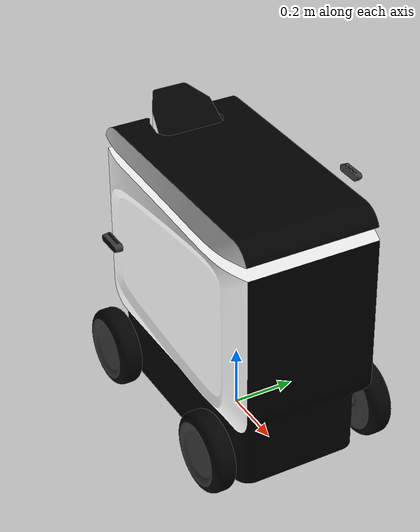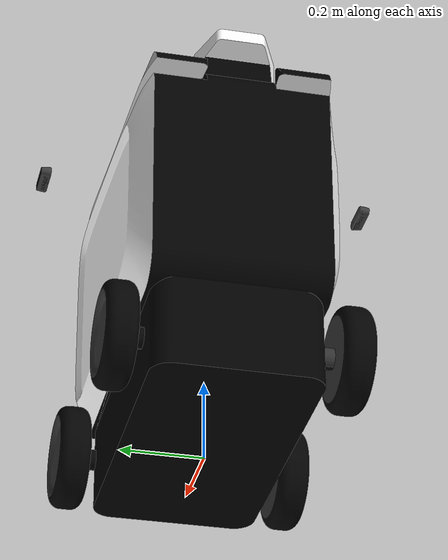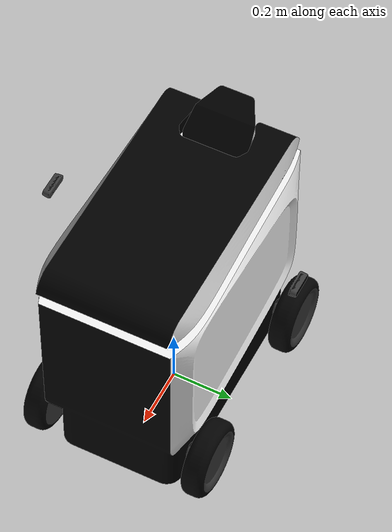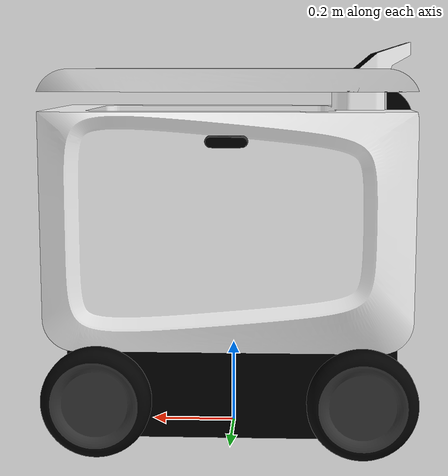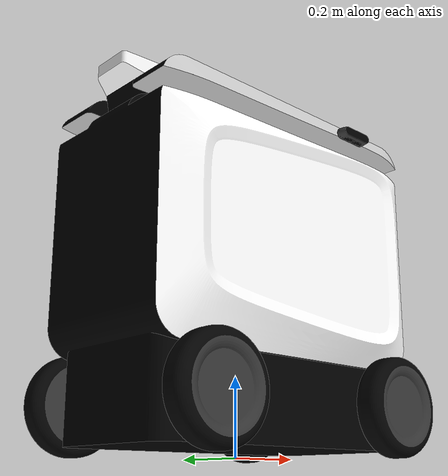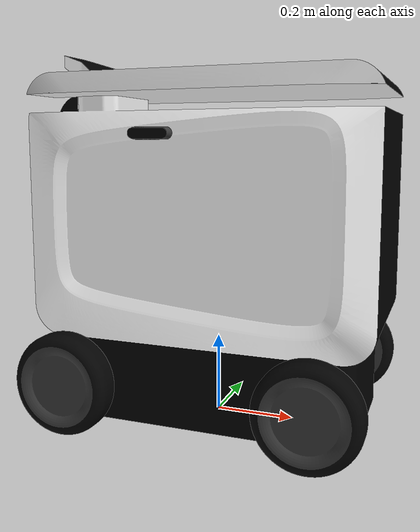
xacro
<?xml version="1.0"?>

<robot name="deliverybot" xmlns:xacro="http://wiki.ros.org/xacro">
    <xacro:include
        filename="$(find deliverybot_description)/models/deliverybot/xacro/deliverybot.xacro" />
    <xacro:include
        filename="$(find deliverybot_description)/models/deliverybot/xacro/cameras.xacro" />

    <!-- Realsense Camera -->
    <xacro:realsense_camera
        name="front"
        parent="base_link"
        orientation="${90 * deg_to_rad}"
        mirror="-1">
        <origin xyz="0 0.39875 0.25250" rpy="0 0 ${90*deg_to_rad}" />
    </xacro:realsense_camera>
    <xacro:realsense_camera
        name="rear"
        parent="base_link"
        orientation="${90 * deg_to_rad}"
        mirror="1">
        <origin xyz="0 -0.39875 0.25250" rpy="0 0 ${-90 * deg_to_rad}" />
    </xacro:realsense_camera>
</robot>

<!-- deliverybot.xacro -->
<robot name="deliverybot" xmlns:xacro="http://wiki.ros.org/xacro">
    <xacro:include
        filename="$(find deliverybot_description)/models/deliverybot/xacro/deliverybot_joints.xacro" />
    <xacro:include
        filename="$(find deliverybot_description)/models/deliverybot/xacro/deliverybot_control.xacro" />
    <xacro:property name="robot_namespace" value="/deliverybot" />

    <!-- Gazebo Plugins -->
    <gazebo>
        <plugin name="gazebo_ros2_control" filename="libgazebo_ros2_control.so">
            <robotNamespace>${robot_namespace}</robotNamespace>
            <parameters>$(find deliverybot_description)/models/deliverybot/config/controllers.yaml</parameters>
        </plugin>
    </gazebo>

    <!-- Math Constants -->
    <xacro:property name="deg_to_rad" value="0.01745329251994329577" />
    <xacro:property name="steer_limhigh_deg" value="30" />
    <xacro:property name="steer_limlow_deg" value="-30" />
    <!-- Robot Base Dimensions -->
    <xacro:property name="base_length" value="0.85" />
    <xacro:property name="base_width" value="0.35" />
    <xacro:property name="base_mass" value="72.3" />

    <!-- Wheel Link Dimensions -->
    <xacro:property name="wheel_radius" value="0.125" />
    <xacro:property name="wheel_thickness" value="0.1" />
    <xacro:property name="wheel_mass" value="3.5" />

    <!-- Steering Link Dimensions -->
    <xacro:property name="steer_radius" value="0.1" />
    <xacro:property name="steer_thickness" value="0.02" />
    <xacro:property name="steer_mass" value="1" />

    <!-- Velocity and Movement -->
    <xacro:property name="velocity_limlow" value="-5.0" />
    <xacro:property name="velocity_limhigh" value="8.0" />

    <!-- Axle Positions -->
    <xacro:property name="axle_length_offset" value="0.125" />
    <xacro:property name="axle_width_offset" value="0.1" />
    <xacro:property name="steer_offset" value="-0.15" />

    <!-- Dummy Link -->
    <link name="base_footprint">
        <origin xyz="0 0 0" rpy="0 0 0" />
    </link>

    <!-- Base Link -->
    <link name="base_link">
        <visual>
            <origin xyz="0 0 0" rpy="0 0 ${-pi/2}" />
            <geometry>
                <mesh
                    filename="package://deliverybot_description/models/deliverybot/meshes/EVA_Body.dae" />
            </geometry>
        </visual>
        <collision>
            <origin xyz="0 0 0" rpy="0 0 ${-pi/2}" />
            <geometry>
                <mesh
                    filename="package://deliverybot_description/models/deliverybot/meshes/EVA_Body.dae" />
            </geometry>
        </collision>
        <inertial>
            <origin xyz="0 0 0" rpy="0 0 ${-pi/2}" />
            <mass value="64.3" />
            <inertia ixx="8.303" ixy="0" ixz="0" iyy="5.468" iyz="0.00" izz="6.02" />
        </inertial>
    </link>
    <!-- Dummy Joint -->
    <joint name="base_joint" type="fixed">
        <origin xyz="0 0 0.470" rpy="0 0 0" />
        <parent link="base_footprint" />
        <child link="base_link" />
    </joint>

    <link name="center_steer_link">
        <inertial>
            <origin rpy="0 0 0" xyz="0 0 0" />
            <mass value="${steer_mass}" />
            <inertia
                ixx="${steer_mass * (3.0 * steer_radius * steer_radius + steer_thickness * steer_thickness) / 12.0}"
                ixy="0.0" ixz="0.0"
                iyy="${steer_mass * (3.0 * steer_radius * steer_radius + steer_thickness * steer_thickness) / 12.0}"
                iyz="0.0"
                izz="${steer_mass * (steer_radius * steer_radius) / 2.0}" />
        </inertial>
    </link>
    <joint name="center_steer_joint" type="revolute">
        <parent link="base_link" />
        <child link="center_steer_link" />
        <origin xyz="${base_length/2 - axle_length_offset} 0 -0.345" rpy="0 0 0" />
        <axis xyz="0 0 1" />
        <limit effort="${steer_effort}" lower="${steer_limit_deg * deg_to_rad * -1.0}"
            upper="${steer_limit_deg * deg_to_rad}" velocity="${steer_velocity}" />
    </joint>

    <!-- Steerable Front Wheels -->
    <xacro:front_wheel_lr
        name="front_right"
        parent="base"
        reflect="-1"
        wheel_radius="${wheel_radius}"
        wheel_thickness="${wheel_thickness}"
        wheel_mass="${wheel_mass}"
        steer_radius="${steer_radius}"
        steer_thickness="${steer_thickness}"
        steer_mass="${steer_mass}"
        base_length="${base_length}"
        base_width="${base_width}"
        axle_length_offset="${axle_length_offset}"
        axle_width_offset="${axle_width_offset}"
        steer_height="${wheel_radius+steer_offset}">
    </xacro:front_wheel_lr>
    <xacro:front_wheel_lr
        name="front_left"
        parent="base"
        reflect="1"
        wheel_radius="${wheel_radius}"
        wheel_thickness="${wheel_thickness}"
        wheel_mass="${wheel_mass}"
        steer_radius="${steer_radius}"
        steer_thickness="${steer_thickness}"
        steer_mass="${steer_mass}"
        base_length="${base_length}"
        base_width="${base_width}"
        axle_length_offset="${axle_length_offset}"
        axle_width_offset="${axle_width_offset}"
        steer_height="${wheel_radius+steer_offset}">
    </xacro:front_wheel_lr>

    <xacro:rear_wheel_lr
        name="rear_right"
        parent="base"
        reflect="-1"
        wheel_radius="${wheel_radius}"
        wheel_thickness="${wheel_thickness}"
        wheel_mass="${wheel_mass}"
        base_length="${base_length}"
        base_width="${base_width}"
        axle_length_offset="${axle_length_offset}"
        axle_width_offset="${axle_width_offset}">
    </xacro:rear_wheel_lr>
    <xacro:rear_wheel_lr
        name="rear_left"
        parent="base"
        reflect="1"
        wheel_radius="${wheel_radius}"
        wheel_thickness="${wheel_thickness}"
        wheel_mass="${wheel_mass}"
        base_length="${base_length}"
        base_width="${base_width}"
        axle_length_offset="${axle_length_offset}"
        axle_width_offset="${axle_width_offset}">
    </xacro:rear_wheel_lr>
    <xacro:door
        name="door"
        parent="base">
    </xacro:door>

    <ros2_control name="GazeboSystem" type="system">
        <hardware>
            <plugin>gazebo_ros2_control/GazeboSystem</plugin>
        </hardware>
        <xacro:steering_control
            name="center"
            steer_limlow="${steer_limlow_deg * deg_to_rad}"
            steer_limhigh="${steer_limhigh_deg * deg_to_rad}" />
        <xacro:steering_control
            name="front_right"
            steer_limlow="${steer_limlow_deg * deg_to_rad}"
            steer_limhigh="${steer_limhigh_deg * deg_to_rad}" />
        <xacro:velocity_control
            name="front_right"
            velocity_limlow="${velocity_limlow}"
            velocity_limhigh="${velocity_limhigh}" />
        <xacro:steering_control
            name="front_left"
            steer_limlow="${steer_limlow_deg * deg_to_rad}"
            steer_limhigh="${steer_limhigh_deg * deg_to_rad}" />
        <xacro:velocity_control
            name="front_left"
            velocity_limlow="${velocity_limlow}"
            velocity_limhigh="${velocity_limhigh}" />
        <xacro:velocity_control
            name="rear_right"
            velocity_limlow="${velocity_limlow}"
            velocity_limhigh="${velocity_limhigh}" />
        <xacro:velocity_control
            name="rear_left"
            velocity_limlow="${velocity_limlow}"
            velocity_limhigh="${velocity_limhigh}" />
        <xacro:door_control
            name="door"
            door_limlow="${0 * deg_to_rad}"
            door_limhigh="${-90 * deg_to_rad}" />
    </ros2_control>
</robot>

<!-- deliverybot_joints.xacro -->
<robot name="deliverybot" xmlns:xacro="http://wiki.ros.org/xacro">
    <xacro:property name="steer_effort" value="10.0" />
    <xacro:property name="steer_velocity"
        value="0.5" />
    <xacro:property name="steer_limit_deg" value="35.0" />
    <xacro:macro name="front_wheel_lr"
        params="
        name
        parent
        reflect
        wheel_radius
        wheel_thickness
        wheel_mass
        steer_radius
        steer_thickness
        steer_mass
        base_length
        base_width
        axle_length_offset
        axle_width_offset
        steer_height">

        <link name="${name}_steer_link">
            <inertial>
                <origin rpy="0 0 0" xyz="0 0 0" />
                <mass value="${steer_mass}" />
                <inertia
                    ixx="${steer_mass * (3.0 * steer_radius * steer_radius + steer_thickness * steer_thickness) / 12.0}"
                    ixy="0.0" ixz="0.0"
                    iyy="${steer_mass * (3.0 * steer_radius * steer_radius + steer_thickness * steer_thickness) / 12.0}"
                    iyz="0.0"
                    izz="${steer_mass * (steer_radius * steer_radius) / 2.0}" />
            </inertial>
        </link>
        <joint name="${name}_steer_joint" type="revolute">
            <parent link="${parent}_link" />
            <child link="${name}_steer_link" />
            <origin
                xyz="${base_length/2-axle_length_offset} ${reflect*(base_width/2)} ${-0.345}"
                rpy="0 0 0" />
            <axis xyz="0 0 1" />
            <limit effort="${steer_effort}"
                lower="${steer_limit_deg * deg_to_rad * -1.0}"
                upper="${steer_limit_deg * deg_to_rad}"
                velocity="${steer_velocity}" />
        </joint>
        <link name="${name}_wheel_link">
            <visual>
                <origin xyz="0 0 0" rpy="0 0 ${reflect * -pi/2}" />
                <geometry>
                    <mesh
                        filename="package://deliverybot_description/models/deliverybot/meshes/EVA_Wheel.dae" />
                </geometry>
            </visual>
            <collision>
                <origin xyz="0 0 0" rpy="0 0 ${reflect * -pi/2}" />
                <geometry>
                    <mesh
                        filename="package://deliverybot_description/models/deliverybot/meshes/EVA_Wheel.dae" />
                </geometry>
                <surface>
                    <friction>
                        <ode>
                            <mu>0.7</mu>
                            <mu2>0.7</mu2>
                        </ode>
                    </friction>
                </surface>
            </collision>
            <inertial>
                <origin xyz="0 0 0" rpy="0 0 0" />
                <mass value="3.512" />
                <inertia ixx="0.02665" ixy="0" ixz="0" iyy="0.0148" iyz="0" izz="0.01479" />
            </inertial>
        </link>
        <joint name="${name}_wheel_joint" type="continuous">
            <parent link="${name}_steer_link" />
            <child link="${name}_wheel_link" />
            <origin xyz="0 ${reflect * (wheel_thickness)} 0" rpy="0 0 0" />
            <axis xyz="0 1 0" />
        </joint>
        <gazebo reference="${name}_steer_link">
            <mu1 value="2.0" />
            <mu2 value="2.0" />
            <kp value="10000000.0" />
            <kd value="1.0" />
            <fdir1 value="0 1 0" />
        </gazebo>

        <gazebo reference="${name}_wheel_link">
            <mu1 value="2.0" />
            <mu2 value="2.0" />
            <kp value="10000000.0" />
            <kd value="1.0" />
            <fdir1 value="0 1 0" />
        </gazebo>
    </xacro:macro>
    <!-- Rear Wheel Links -->
    <xacro:macro name="rear_wheel_lr"
        params="
        name
        parent
        reflect
        wheel_radius
        wheel_thickness
        wheel_mass
        base_length
        base_width
        axle_length_offset
        axle_width_offset">
        <link name="${name}_wheel_link">
            <visual>
                <origin xyz="0 0 0" rpy="0 0 ${reflect * -pi/2}" />
                <geometry>
                    <mesh
                        filename="package://deliverybot_description/models/deliverybot/meshes/EVA_Wheel.dae" />
                </geometry>
            </visual>
            <collision>
                <origin xyz="0 0 0" rpy="0 0 ${reflect * -pi/2}" />
                <geometry>
                    <mesh
                        filename="package://deliverybot_description/models/deliverybot/meshes/EVA_Wheel.dae" />
                </geometry>
                <surface>
                    <friction>
                        <ode>
                            <mu>0.7</mu>
                            <mu2>0.7</mu2>
                        </ode>
                    </friction>
                </surface>
            </collision>
            <inertial>
                <origin xyz="0 0 0" rpy="0 0 ${reflect * -pi/2}" />
                <mass value="3.512" />
                <inertia ixx="0.02665" ixy="0" ixz="0" iyy="0.0148" iyz="0" izz="0.01479" />
            </inertial>

        </link>
        <joint name="${name}_wheel_joint" type="continuous">
            <parent link="${parent}_link" />
            <child link="${name}_wheel_link" />
            <origin
                xyz="${-(base_length/2-axle_length_offset)} ${reflect*(base_width/2 + wheel_thickness)} ${-0.345}"
                rpy="0 0 0" />
            <axis xyz="0 1 0" />
        </joint>
        <gazebo reference="${name}_wheel_link">
            <mu1 value="2.0" />
            <mu2 value="2.0" />
            <kp value="10000000.0" />
            <kd value="1.0" />
            <fdir1 value="0 1 0" />
        </gazebo>
    </xacro:macro>
    <xacro:macro name="door"
        params="
        name
        parent">
        <link name="${name}_link">
            <visual>
                <geometry>
                    <mesh
                        filename="package://deliverybot_description/models/deliverybot/meshes/EVA_Lid.dae" />
                </geometry>
                <origin rpy="0 0 ${-pi/2}" xyz="0.400 -0.002550 0.01750" />
            </visual>
            <collision>
                <origin rpy="0 0 ${-pi/2}" xyz="0.400 -0.002550 0.01750" />
                <geometry>
                    <mesh
                        filename="package://deliverybot_description/models/deliverybot/meshes/EVA_Lid.dae" />
                </geometry>
            </collision>
            <inertial>
                <origin rpy="0 0 0" xyz="0 0 0" />
                <mass value="8" />
                <inertia ixx="0.4381" ixy="0" ixz="0" iyy="0.1637" iyz="0.005" izz="0.6" />
            </inertial>
        </link>
        <joint name="${name}_joint" type="revolute">
            <limit lower="0" upper="-1.5708" effort="100" velocity="0.5" />
            <origin rpy="0 0 0" xyz="-0.415 0 0.35250" />
            <parent link="${parent}_link" />
            <child link="${name}_link" />
            <axis xyz="0 1 0" rpy="0 0 0" />
        </joint>
    </xacro:macro>
</robot>

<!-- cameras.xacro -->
<robot name="deliverybot" xmlns:xacro="http://wiki.ros.org/xacro">
    <xacro:macro
        name="realsense_camera"
        params="
        name
        parent
        orientation
        mirror
        *origin">

        <!-- Visual Component -->
        <link name="${name}_rgb_link_optical" />
        <joint name="${name}_rgb_joint_optical" type="fixed">
            <origin xyz="0.025 0 0" rpy="0 0 0" />
            <parent link="${name}_depth_link" />
            <child link="${name}_rgb_link_optical" />
        </joint>
        <gazebo reference="${name}_rgb_link_optical">
            <sensor type="camera" name="${name}_rgb_camera">
                <visualize>false</visualize>
                <update_rate>10.0</update_rate>
                <camera name="${name}_rgb_camera">
                    <pose>0 0 0 0 0 0</pose>
                    <horizontal_fov>1.487021</horizontal_fov>
                    <image>
                        <width>1280</width>
                        <height>720</height>
                        <format>B8G8R8</format>
                    </image>
                    <clip>
                        <near>0.011</near>
                        <far>10</far>
                    </clip>
                </camera>
                <plugin name="${name}_rgb_controller" filename="libgazebo_ros_camera.so">
                    <ros>
                        <namespace>d430</namespace>
                        <remapping>${name}_rgb/image_raw:=color/image_raw</remapping>
                        <remapping>${name}_rgb/camera_info:=camera_info</remapping>
                    </ros>
                    <alwaysOn>true</alwaysOn>
                    <updateRate>0.0</updateRate>
                    <cameraName>${name}_rgb_camera</cameraName>
                    <frame_name>${name}_rgb_link_optical</frame_name>
                  </plugin>
            </sensor>
        </gazebo>

        <!-- Depth Component -->
        <link name="${name}_depth_link">
            <visual>
                <origin xyz="0 0 0" rpy="0 0 ${orientation}" />
                <geometry>
                    <mesh
                        filename="package://deliverybot_description/models/deliverybot/meshes/IntelRealsense.dae" scale="0.1 0.1 0.1" />
                </geometry>
            </visual>
            <collision>
                <origin xyz="0 0 0" rpy="0 0 ${orientation}" />
                <geometry>
                    <mesh
                        filename="package://deliverybot_description/models/deliverybot/meshes/IntelRealsense.dae" scale="0.1 0.1 0.1" />
                </geometry>
            </collision>
            <inertial>
                <origin xyz="0 0 0" rpy="0 0 ${orientation}" />
                <mass value="0.1" />
                <inertia ixx="0.001" ixy="0" ixz="0" iyy="0.005" iyz="0" izz="0.005" />
            </inertial>
        </link>
        <link name="${name}_depth_link_optical" />
        <joint name="${name}_depth_joint" type="fixed">
            <parent link="${parent}" />
            <child link="${name}_depth_link" />
            <xacro:insert_block name="origin" />
        </joint>
        <joint name="${name}_depth_joint_optical" type="fixed">
            <origin xyz="0 0 0" rpy="${-pi/2} 0 ${-pi/2}" />
            <parent link="${name}_depth_link" />
            <child link="${name}_depth_link_optical" />
        </joint>
        <gazebo reference="${name}_depth_link">
            <sensor type="depth" name="${name}_depth_camera">
                <visualize>true</visualize>
                <update_rate>10.0</update_rate>
                <always_on>true</always_on>
                <pose>0 0 0 0 0 0</pose>
                <camera name="${name}_depth_camera">
                    <horizontal_fov>1.487021</horizontal_fov>
                    <image>
                        <width>424</width>
                        <height>240</height>
                        <format>B8G8R8</format>
                    </image>
                    <clip>
                        <near>0.5</near>
                        <far>8</far>
                    </clip>
                </camera>
                <plugin name="${name}_depth_controller" filename="libgazebo_ros_camera.so">
                    <ros>
                        <namespace>d430</namespace>
                        <remapping>${name}_depth/image_raw:=color/image_raw</remapping>
                        <remapping>${name}_depth/depth/image:=depth/image_rect_raw</remapping>
                        <remapping>${name}_depth/camera_info:=camera_info</remapping>
                        <remapping>${name}_depth/depth/camera_info:=depth/camera_info</remapping>
                        <remapping>${name}_depth/points:=depth/points</remapping>
                    </ros>
                    <frame_name>${name}_depth_link_optical</frame_name>
                    <cameraName>${name}_depth_camera</cameraName>
                    <hack_baseline>0.07</hack_baseline>
                    <min_depth>0.05</min_depth>
                    <max_depth>8.0</max_depth>
                  </plugin>
            </sensor>
        </gazebo>

    </xacro:macro>
</robot>
